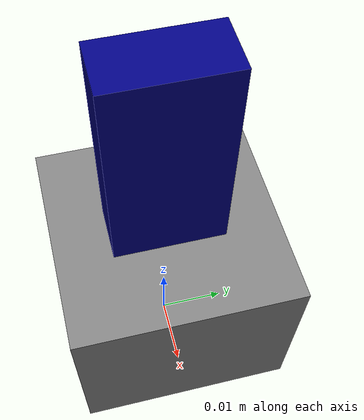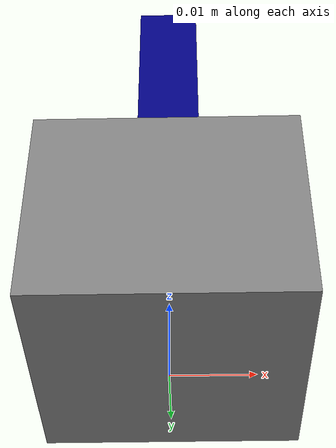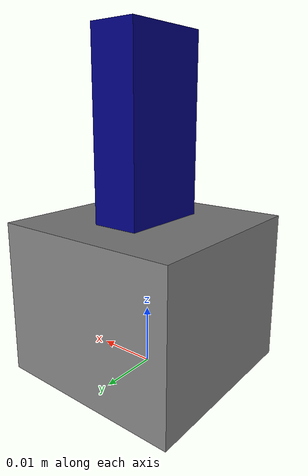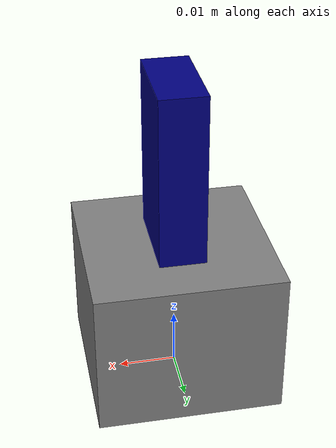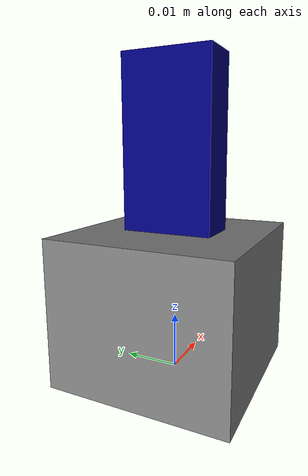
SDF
<?xml version='1.0'?>
<sdf version="1.4">
<model name="toio_cube_doll2">
  <pose>0 0 0.013 0 0 0</pose>
    <link name="link">
      <inertial>
        <mass>0.05</mass>
        <inertia>
          <ixx>0.0083</ixx>
          <ixy>0.0</ixy>
          <ixz>0.0</ixz>
          <iyy>0.0083</iyy>
          <iyz>0.0</iyz>
          <izz>0.0083</izz>
        </inertia>
      </inertial>
      <collision name="collision">
        <geometry>
          <box>
            <size>0.032 0.032 0.026</size>
          </box>
        </geometry>
      </collision>
      <visual name="visual">
        <geometry>
          <box>
            <size>0.032 0.032 0.026</size>
          </box>
        </geometry>
        <material>
          <ambient>0.8 0.8 0.8 1</ambient>
          <diffuse>0.5 0.5 0.5 1</diffuse>
          <specular>0 0 0 1</specular>
          <emissive>0.3 0.3 0.3 1</emissive>
        </material>
      </visual>
      <visual name="doll">
        <pose>0 0 0.023 0 0 0</pose>
        <geometry>
          <box>
            <size>0.008 0.016 0.040</size>
          </box>
        </geometry>
        <material>
          <ambient>0 0 0.8 1</ambient>
          <diffuse>0 0 0.5 1</diffuse>
          <specular>0 0 0 1</specular>
          <emissive>0 0 0.3 1</emissive>
        </material>
      </visual>
    </link>

    <plugin name="object_controller" filename="libgazebo_ros_planar_move.so">
      <commandTopic>toio2/cmd_vel</commandTopic>
      <odometryTopic>toio2/wheel_odom</odometryTopic>
      <odometryFrame>toio2/wheel_odom</odometryFrame>
      <odometryRate>5.0</odometryRate>
      <robotBaseFrame>toio2/base_link</robotBaseFrame>
    </plugin>

    <plugin name="object_controller" filename="libgazebo_ros_p3d.so">
      <robotNamespace></robotNamespace>
      <bodyName>link</bodyName>
      <topicName>toio2/odom</topicName>
      <frameName>world</frameName>
      <updateRate>5.0</updateRate>
    </plugin>

  </model>
</sdf>
